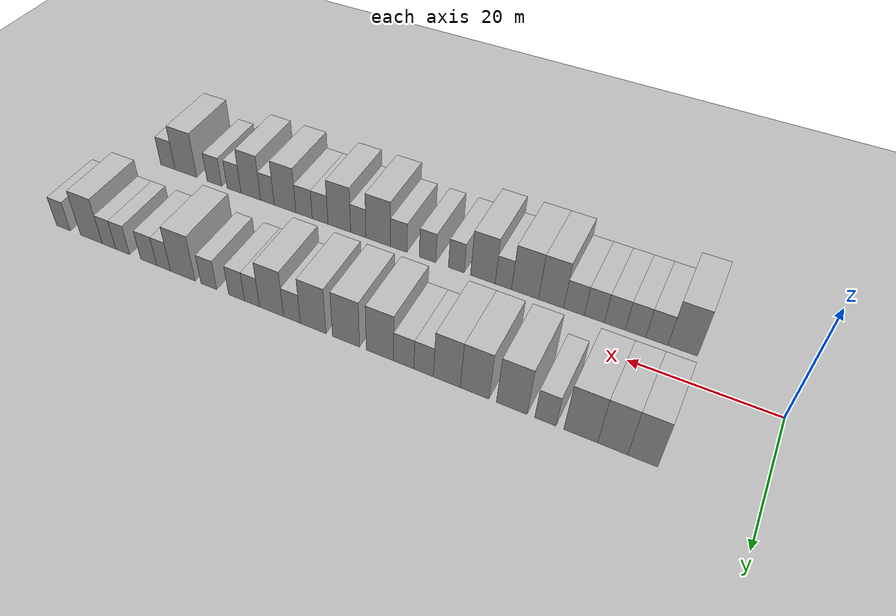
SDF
<sdf version="1.6">
 <world name="default">
  <include><name>ground_plane_1</name><uri>model://HANNAS_ground_plane</uri></include>
  <include>
   <name>ground_plane_2</name>
   <uri>model://HANNAS_ground_plane</uri>
   <pose>100 0 0  0 0 0</pose>
  </include>
  <model name="building_1">
   <static>1</static>
   <pose>13.8228 9.5000 0 0.000000 0.000000 1.570796</pose>
   <link name="link">
    <pose>0 0 4.50 0 0 0</pose>
    <collision name="collision"><geometry><box><size>10.0000 3.6455 9.0000</size></box></geometry></collision>
    <visual name="visual">
     <cast_shadows>0</cast_shadows>
     <geometry><box><size>10.0000 3.6455 9.0000</size></box></geometry>
     <material>
      <script>
       <uri>model://HANNAS_wall/materials/scripts</uri>
       <uri>model://HANNAS_wall/materials/textures</uri>
       <name>vrc/HANNAS_wall</name>
      </script>
     </material>
    </visual>
   </link>
  </model>
  <model name="building_2">
   <static>1</static>
   <pose>17.5082 9.5000 0 0.000000 0.000000 1.570796</pose>
   <link name="link">
    <pose>0 0 4.50 0 0 0</pose>
    <collision name="collision"><geometry><box><size>10.0000 3.7254 9.0000</size></box></geometry></collision>
    <visual name="visual">
     <cast_shadows>0</cast_shadows>
     <geometry><box><size>10.0000 3.7254 9.0000</size></box></geometry>
     <material>
      <script>
       <uri>model://HANNAS_wall/materials/scripts</uri>
       <uri>model://HANNAS_wall/materials/textures</uri>
       <name>vrc/HANNAS_wall</name>
      </script>
     </material>
    </visual>
   </link>
  </model>
  <model name="building_3">
   <static>1</static>
   <pose>21.4982 9.5000 0 0.000000 0.000000 1.570796</pose>
   <link name="link">
    <pose>0 0 4.50 0 0 0</pose>
    <collision name="collision"><geometry><box><size>10.0000 4.2545 9.0000</size></box></geometry></collision>
    <visual name="visual">
     <cast_shadows>0</cast_shadows>
     <geometry><box><size>10.0000 4.2545 9.0000</size></box></geometry>
     <material>
      <script>
       <uri>model://HANNAS_wall/materials/scripts</uri>
       <uri>model://HANNAS_wall/materials/textures</uri>
       <name>vrc/HANNAS_wall</name>
      </script>
     </material>
    </visual>
   </link>
  </model>
  <model name="building_4">
   <static>1</static>
   <pose>26.0055 9.5000 0 0.000000 0.000000 1.570796</pose>
   <link name="link">
    <pose>0 0 3.00 0 0 0</pose>
    <collision name="collision"><geometry><box><size>10.0000 2.7602 6.0000</size></box></geometry></collision>
    <visual name="visual">
     <cast_shadows>0</cast_shadows>
     <geometry><box><size>10.0000 2.7602 6.0000</size></box></geometry>
     <material>
      <script>
       <uri>model://HANNAS_wall/materials/scripts</uri>
       <uri>model://HANNAS_wall/materials/textures</uri>
       <name>vrc/HANNAS_wall</name>
      </script>
     </material>
    </visual>
   </link>
  </model>
  <model name="building_5">
   <static>1</static>
   <pose>30.4323 9.5000 0 0.000000 0.000000 1.570796</pose>
   <link name="link">
    <pose>0 0 4.50 0 0 0</pose>
    <collision name="collision"><geometry><box><size>10.0000 4.0935 9.0000</size></box></geometry></collision>
    <visual name="visual">
     <cast_shadows>0</cast_shadows>
     <geometry><box><size>10.0000 4.0935 9.0000</size></box></geometry>
     <material>
      <script>
       <uri>model://HANNAS_wall/materials/scripts</uri>
       <uri>model://HANNAS_wall/materials/textures</uri>
       <name>vrc/HANNAS_wall</name>
      </script>
     </material>
    </visual>
   </link>
  </model>
  <model name="building_6">
   <static>1</static>
   <pose>35.4440 9.5000 0 0.000000 0.000000 1.570796</pose>
   <link name="link">
    <pose>0 0 4.50 0 0 0</pose>
    <collision name="collision"><geometry><box><size>10.0000 3.9298 9.0000</size></box></geometry></collision>
    <visual name="visual">
     <cast_shadows>0</cast_shadows>
     <geometry><box><size>10.0000 3.9298 9.0000</size></box></geometry>
     <material>
      <script>
       <uri>model://HANNAS_wall/materials/scripts</uri>
       <uri>model://HANNAS_wall/materials/textures</uri>
       <name>vrc/HANNAS_wall</name>
      </script>
     </material>
    </visual>
   </link>
  </model>
  <model name="building_7">
   <static>1</static>
   <pose>39.3031 9.5000 0 0.000000 0.000000 1.570796</pose>
   <link name="link">
    <pose>0 0 4.50 0 0 0</pose>
    <collision name="collision"><geometry><box><size>10.0000 3.7886 9.0000</size></box></geometry></collision>
    <visual name="visual">
     <cast_shadows>0</cast_shadows>
     <geometry><box><size>10.0000 3.7886 9.0000</size></box></geometry>
     <material>
      <script>
       <uri>model://HANNAS_wall/materials/scripts</uri>
       <uri>model://HANNAS_wall/materials/textures</uri>
       <name>vrc/HANNAS_wall</name>
      </script>
     </material>
    </visual>
   </link>
  </model>
  <model name="building_8">
   <static>1</static>
   <pose>42.5841 9.5000 0 0.000000 0.000000 1.570796</pose>
   <link name="link">
    <pose>0 0 3.00 0 0 0</pose>
    <collision name="collision"><geometry><box><size>10.0000 2.7733 6.0000</size></box></geometry></collision>
    <visual name="visual">
     <cast_shadows>0</cast_shadows>
     <geometry><box><size>10.0000 2.7733 6.0000</size></box></geometry>
     <material>
      <script>
       <uri>model://HANNAS_wall/materials/scripts</uri>
       <uri>model://HANNAS_wall/materials/textures</uri>
       <name>vrc/HANNAS_wall</name>
      </script>
     </material>
    </visual>
   </link>
  </model>
  <model name="building_9">
   <static>1</static>
   <pose>45.4373 9.5000 0 0.000000 0.000000 1.570796</pose>
   <link name="link">
    <pose>0 0 3.00 0 0 0</pose>
    <collision name="collision"><geometry><box><size>10.0000 2.9332 6.0000</size></box></geometry></collision>
    <visual name="visual">
     <cast_shadows>0</cast_shadows>
     <geometry><box><size>10.0000 2.9332 6.0000</size></box></geometry>
     <material>
      <script>
       <uri>model://HANNAS_wall/materials/scripts</uri>
       <uri>model://HANNAS_wall/materials/textures</uri>
       <name>vrc/HANNAS_wall</name>
      </script>
     </material>
    </visual>
   </link>
  </model>
  <model name="building_10">
   <static>1</static>
   <pose>48.9115 9.5000 0 0.000000 0.000000 1.570796</pose>
   <link name="link">
    <pose>0 0 4.50 0 0 0</pose>
    <collision name="collision"><geometry><box><size>10.0000 4.0150 9.0000</size></box></geometry></collision>
    <visual name="visual">
     <cast_shadows>0</cast_shadows>
     <geometry><box><size>10.0000 4.0150 9.0000</size></box></geometry>
     <material>
      <script>
       <uri>model://HANNAS_wall/materials/scripts</uri>
       <uri>model://HANNAS_wall/materials/textures</uri>
       <name>vrc/HANNAS_wall</name>
      </script>
     </material>
    </visual>
   </link>
  </model>
  <model name="building_11">
   <static>1</static>
   <pose>53.9710 9.5000 0 0.000000 0.000000 1.570796</pose>
   <link name="link">
    <pose>0 0 4.50 0 0 0</pose>
    <collision name="collision"><geometry><box><size>10.0000 4.1041 9.0000</size></box></geometry></collision>
    <visual name="visual">
     <cast_shadows>0</cast_shadows>
     <geometry><box><size>10.0000 4.1041 9.0000</size></box></geometry>
     <material>
      <script>
       <uri>model://HANNAS_wall/materials/scripts</uri>
       <uri>model://HANNAS_wall/materials/textures</uri>
       <name>vrc/HANNAS_wall</name>
      </script>
     </material>
    </visual>
   </link>
  </model>
  <model name="building_12">
   <static>1</static>
   <pose>59.0237 9.5000 0 0.000000 0.000000 1.570796</pose>
   <link name="link">
    <pose>0 0 4.50 0 0 0</pose>
    <collision name="collision"><geometry><box><size>10.0000 4.0014 9.0000</size></box></geometry></collision>
    <visual name="visual">
     <cast_shadows>0</cast_shadows>
     <geometry><box><size>10.0000 4.0014 9.0000</size></box></geometry>
     <material>
      <script>
       <uri>model://HANNAS_wall/materials/scripts</uri>
       <uri>model://HANNAS_wall/materials/textures</uri>
       <name>vrc/HANNAS_wall</name>
      </script>
     </material>
    </visual>
   </link>
  </model>
  <model name="building_13">
   <static>1</static>
   <pose>62.3560 9.5000 0 0.000000 0.000000 1.570796</pose>
   <link name="link">
    <pose>0 0 3.00 0 0 0</pose>
    <collision name="collision"><geometry><box><size>10.0000 2.6633 6.0000</size></box></geometry></collision>
    <visual name="visual">
     <cast_shadows>0</cast_shadows>
     <geometry><box><size>10.0000 2.6633 6.0000</size></box></geometry>
     <material>
      <script>
       <uri>model://HANNAS_wall/materials/scripts</uri>
       <uri>model://HANNAS_wall/materials/textures</uri>
       <name>vrc/HANNAS_wall</name>
      </script>
     </material>
    </visual>
   </link>
  </model>
  <model name="building_14">
   <static>1</static>
   <pose>65.6383 9.5000 0 0.000000 0.000000 1.570796</pose>
   <link name="link">
    <pose>0 0 4.50 0 0 0</pose>
    <collision name="collision"><geometry><box><size>10.0000 3.9012 9.0000</size></box></geometry></collision>
    <visual name="visual">
     <cast_shadows>0</cast_shadows>
     <geometry><box><size>10.0000 3.9012 9.0000</size></box></geometry>
     <material>
      <script>
       <uri>model://HANNAS_wall/materials/scripts</uri>
       <uri>model://HANNAS_wall/materials/textures</uri>
       <name>vrc/HANNAS_wall</name>
      </script>
     </material>
    </visual>
   </link>
  </model>
  <model name="building_15">
   <static>1</static>
   <pose>68.8008 9.5000 0 0.000000 0.000000 1.570796</pose>
   <link name="link">
    <pose>0 0 3.00 0 0 0</pose>
    <collision name="collision"><geometry><box><size>10.0000 2.4239 6.0000</size></box></geometry></collision>
    <visual name="visual">
     <cast_shadows>0</cast_shadows>
     <geometry><box><size>10.0000 2.4239 6.0000</size></box></geometry>
     <material>
      <script>
       <uri>model://HANNAS_wall/materials/scripts</uri>
       <uri>model://HANNAS_wall/materials/textures</uri>
       <name>vrc/HANNAS_wall</name>
      </script>
     </material>
    </visual>
   </link>
  </model>
  <model name="building_16">
   <static>1</static>
   <pose>71.3409 9.5000 0 0.000000 0.000000 1.570796</pose>
   <link name="link">
    <pose>0 0 3.00 0 0 0</pose>
    <collision name="collision"><geometry><box><size>10.0000 2.6561 6.0000</size></box></geometry></collision>
    <visual name="visual">
     <cast_shadows>0</cast_shadows>
     <geometry><box><size>10.0000 2.6561 6.0000</size></box></geometry>
     <material>
      <script>
       <uri>model://HANNAS_wall/materials/scripts</uri>
       <uri>model://HANNAS_wall/materials/textures</uri>
       <name>vrc/HANNAS_wall</name>
      </script>
     </material>
    </visual>
   </link>
  </model>
  <model name="building_17">
   <static>1</static>
   <pose>76.0085 9.5000 0 0.000000 0.000000 1.570796</pose>
   <link name="link">
    <pose>0 0 3.00 0 0 0</pose>
    <collision name="collision"><geometry><box><size>10.0000 2.6791 6.0000</size></box></geometry></collision>
    <visual name="visual">
     <cast_shadows>0</cast_shadows>
     <geometry><box><size>10.0000 2.6791 6.0000</size></box></geometry>
     <material>
      <script>
       <uri>model://HANNAS_wall/materials/scripts</uri>
       <uri>model://HANNAS_wall/materials/textures</uri>
       <name>vrc/HANNAS_wall</name>
      </script>
     </material>
    </visual>
   </link>
  </model>
  <model name="building_18">
   <static>1</static>
   <pose>80.4945 9.5000 0 0.000000 0.000000 1.570796</pose>
   <link name="link">
    <pose>0 0 4.50 0 0 0</pose>
    <collision name="collision"><geometry><box><size>10.0000 4.2929 9.0000</size></box></geometry></collision>
    <visual name="visual">
     <cast_shadows>0</cast_shadows>
     <geometry><box><size>10.0000 4.2929 9.0000</size></box></geometry>
     <material>
      <script>
       <uri>model://HANNAS_wall/materials/scripts</uri>
       <uri>model://HANNAS_wall/materials/textures</uri>
       <name>vrc/HANNAS_wall</name>
      </script>
     </material>
    </visual>
   </link>
  </model>
  <model name="building_19">
   <static>1</static>
   <pose>83.8605 9.5000 0 0.000000 0.000000 1.570796</pose>
   <link name="link">
    <pose>0 0 3.00 0 0 0</pose>
    <collision name="collision"><geometry><box><size>10.0000 2.4390 6.0000</size></box></geometry></collision>
    <visual name="visual">
     <cast_shadows>0</cast_shadows>
     <geometry><box><size>10.0000 2.4390 6.0000</size></box></geometry>
     <material>
      <script>
       <uri>model://HANNAS_wall/materials/scripts</uri>
       <uri>model://HANNAS_wall/materials/textures</uri>
       <name>vrc/HANNAS_wall</name>
      </script>
     </material>
    </visual>
   </link>
  </model>
  <model name="building_20">
   <static>1</static>
   <pose>86.5218 9.5000 0 0.000000 0.000000 1.570796</pose>
   <link name="link">
    <pose>0 0 3.00 0 0 0</pose>
    <collision name="collision"><geometry><box><size>10.0000 2.8836 6.0000</size></box></geometry></collision>
    <visual name="visual">
     <cast_shadows>0</cast_shadows>
     <geometry><box><size>10.0000 2.8836 6.0000</size></box></geometry>
     <material>
      <script>
       <uri>model://HANNAS_wall/materials/scripts</uri>
       <uri>model://HANNAS_wall/materials/textures</uri>
       <name>vrc/HANNAS_wall</name>
      </script>
     </material>
    </visual>
   </link>
  </model>
  <model name="building_21">
   <static>1</static>
   <pose>91.2309 9.5000 0 0.000000 0.000000 1.570796</pose>
   <link name="link">
    <pose>0 0 3.00 0 0 0</pose>
    <collision name="collision"><geometry><box><size>10.0000 2.5348 6.0000</size></box></geometry></collision>
    <visual name="visual">
     <cast_shadows>0</cast_shadows>
     <geometry><box><size>10.0000 2.5348 6.0000</size></box></geometry>
     <material>
      <script>
       <uri>model://HANNAS_wall/materials/scripts</uri>
       <uri>model://HANNAS_wall/materials/textures</uri>
       <name>vrc/HANNAS_wall</name>
      </script>
     </material>
    </visual>
   </link>
  </model>
  <model name="building_22">
   <static>1</static>
   <pose>93.7545 9.5000 0 0.000000 0.000000 1.570796</pose>
   <link name="link">
    <pose>0 0 3.00 0 0 0</pose>
    <collision name="collision"><geometry><box><size>10.0000 2.5124 6.0000</size></box></geometry></collision>
    <visual name="visual">
     <cast_shadows>0</cast_shadows>
     <geometry><box><size>10.0000 2.5124 6.0000</size></box></geometry>
     <material>
      <script>
       <uri>model://HANNAS_wall/materials/scripts</uri>
       <uri>model://HANNAS_wall/materials/textures</uri>
       <name>vrc/HANNAS_wall</name>
      </script>
     </material>
    </visual>
   </link>
  </model>
  <model name="building_23">
   <static>1</static>
   <pose>97.0483 9.5000 0 0.000000 0.000000 1.570796</pose>
   <link name="link">
    <pose>0 0 4.50 0 0 0</pose>
    <collision name="collision"><geometry><box><size>10.0000 4.0752 9.0000</size></box></geometry></collision>
    <visual name="visual">
     <cast_shadows>0</cast_shadows>
     <geometry><box><size>10.0000 4.0752 9.0000</size></box></geometry>
     <material>
      <script>
       <uri>model://HANNAS_wall/materials/scripts</uri>
       <uri>model://HANNAS_wall/materials/textures</uri>
       <name>vrc/HANNAS_wall</name>
      </script>
     </material>
    </visual>
   </link>
  </model>
  <model name="building_24">
   <static>1</static>
   <pose>102.4143 9.5000 0 0.000000 0.000000 1.570796</pose>
   <link name="link">
    <pose>0 0 3.00 0 0 0</pose>
    <collision name="collision"><geometry><box><size>10.0000 2.6569 6.0000</size></box></geometry></collision>
    <visual name="visual">
     <cast_shadows>0</cast_shadows>
     <geometry><box><size>10.0000 2.6569 6.0000</size></box></geometry>
     <material>
      <script>
       <uri>model://HANNAS_wall/materials/scripts</uri>
       <uri>model://HANNAS_wall/materials/textures</uri>
       <name>vrc/HANNAS_wall</name>
      </script>
     </material>
    </visual>
   </link>
  </model>
  <model name="building_49">
   <static>1</static>
   <pose>13.9680 -9.5000 0 0.000000 0.000000 1.570796</pose>
   <link name="link">
    <pose>0 0 4.50 0 0 0</pose>
    <collision name="collision"><geometry><box><size>10.0000 3.9360 9.0000</size></box></geometry></collision>
    <visual name="visual">
     <cast_shadows>0</cast_shadows>
     <geometry><box><size>10.0000 3.9360 9.0000</size></box></geometry>
     <material>
      <script>
       <uri>model://HANNAS_wall/materials/scripts</uri>
       <uri>model://HANNAS_wall/materials/textures</uri>
       <name>vrc/HANNAS_wall</name>
      </script>
     </material>
    </visual>
   </link>
  </model>
  <model name="building_50">
   <static>1</static>
   <pose>17.4290 -9.5000 0 0.000000 0.000000 1.570796</pose>
   <link name="link">
    <pose>0 0 3.00 0 0 0</pose>
    <collision name="collision"><geometry><box><size>10.0000 2.9860 6.0000</size></box></geometry></collision>
    <visual name="visual">
     <cast_shadows>0</cast_shadows>
     <geometry><box><size>10.0000 2.9860 6.0000</size></box></geometry>
     <material>
      <script>
       <uri>model://HANNAS_wall/materials/scripts</uri>
       <uri>model://HANNAS_wall/materials/textures</uri>
       <name>vrc/HANNAS_wall</name>
      </script>
     </material>
    </visual>
   </link>
  </model>
  <model name="building_51">
   <static>1</static>
   <pose>20.3248 -9.5000 0 0.000000 0.000000 1.570796</pose>
   <link name="link">
    <pose>0 0 3.00 0 0 0</pose>
    <collision name="collision"><geometry><box><size>10.0000 2.8054 6.0000</size></box></geometry></collision>
    <visual name="visual">
     <cast_shadows>0</cast_shadows>
     <geometry><box><size>10.0000 2.8054 6.0000</size></box></geometry>
     <material>
      <script>
       <uri>model://HANNAS_wall/materials/scripts</uri>
       <uri>model://HANNAS_wall/materials/textures</uri>
       <name>vrc/HANNAS_wall</name>
      </script>
     </material>
    </visual>
   </link>
  </model>
  <model name="building_52">
   <static>1</static>
   <pose>23.1849 -9.5000 0 0.000000 0.000000 1.570796</pose>
   <link name="link">
    <pose>0 0 3.00 0 0 0</pose>
    <collision name="collision"><geometry><box><size>10.0000 2.9150 6.0000</size></box></geometry></collision>
    <visual name="visual">
     <cast_shadows>0</cast_shadows>
     <geometry><box><size>10.0000 2.9150 6.0000</size></box></geometry>
     <material>
      <script>
       <uri>model://HANNAS_wall/materials/scripts</uri>
       <uri>model://HANNAS_wall/materials/textures</uri>
       <name>vrc/HANNAS_wall</name>
      </script>
     </material>
    </visual>
   </link>
  </model>
  <model name="building_53">
   <static>1</static>
   <pose>26.0589 -9.5000 0 0.000000 0.000000 1.570796</pose>
   <link name="link">
    <pose>0 0 3.00 0 0 0</pose>
    <collision name="collision"><geometry><box><size>10.0000 2.8329 6.0000</size></box></geometry></collision>
    <visual name="visual">
     <cast_shadows>0</cast_shadows>
     <geometry><box><size>10.0000 2.8329 6.0000</size></box></geometry>
     <material>
      <script>
       <uri>model://HANNAS_wall/materials/scripts</uri>
       <uri>model://HANNAS_wall/materials/textures</uri>
       <name>vrc/HANNAS_wall</name>
      </script>
     </material>
    </visual>
   </link>
  </model>
  <model name="building_54">
   <static>1</static>
   <pose>28.9459 -9.5000 0 0.000000 0.000000 1.570796</pose>
   <link name="link">
    <pose>0 0 3.00 0 0 0</pose>
    <collision name="collision"><geometry><box><size>10.0000 2.9412 6.0000</size></box></geometry></collision>
    <visual name="visual">
     <cast_shadows>0</cast_shadows>
     <geometry><box><size>10.0000 2.9412 6.0000</size></box></geometry>
     <material>
      <script>
       <uri>model://HANNAS_wall/materials/scripts</uri>
       <uri>model://HANNAS_wall/materials/textures</uri>
       <name>vrc/HANNAS_wall</name>
      </script>
     </material>
    </visual>
   </link>
  </model>
  <model name="building_55">
   <static>1</static>
   <pose>32.2471 -9.5000 0 0.000000 0.000000 1.570796</pose>
   <link name="link">
    <pose>0 0 4.50 0 0 0</pose>
    <collision name="collision"><geometry><box><size>10.0000 3.6613 9.0000</size></box></geometry></collision>
    <visual name="visual">
     <cast_shadows>0</cast_shadows>
     <geometry><box><size>10.0000 3.6613 9.0000</size></box></geometry>
     <material>
      <script>
       <uri>model://HANNAS_wall/materials/scripts</uri>
       <uri>model://HANNAS_wall/materials/textures</uri>
       <name>vrc/HANNAS_wall</name>
      </script>
     </material>
    </visual>
   </link>
  </model>
  <model name="building_56">
   <static>1</static>
   <pose>36.0816 -9.5000 0 0.000000 0.000000 1.570796</pose>
   <link name="link">
    <pose>0 0 4.50 0 0 0</pose>
    <collision name="collision"><geometry><box><size>10.0000 4.0078 9.0000</size></box></geometry></collision>
    <visual name="visual">
     <cast_shadows>0</cast_shadows>
     <geometry><box><size>10.0000 4.0078 9.0000</size></box></geometry>
     <material>
      <script>
       <uri>model://HANNAS_wall/materials/scripts</uri>
       <uri>model://HANNAS_wall/materials/textures</uri>
       <name>vrc/HANNAS_wall</name>
      </script>
     </material>
    </visual>
   </link>
  </model>
  <model name="building_57">
   <static>1</static>
   <pose>39.3182 -9.5000 0 0.000000 0.000000 1.570796</pose>
   <link name="link">
    <pose>0 0 3.00 0 0 0</pose>
    <collision name="collision"><geometry><box><size>10.0000 2.4653 6.0000</size></box></geometry></collision>
    <visual name="visual">
     <cast_shadows>0</cast_shadows>
     <geometry><box><size>10.0000 2.4653 6.0000</size></box></geometry>
     <material>
      <script>
       <uri>model://HANNAS_wall/materials/scripts</uri>
       <uri>model://HANNAS_wall/materials/textures</uri>
       <name>vrc/HANNAS_wall</name>
      </script>
     </material>
    </visual>
   </link>
  </model>
  <model name="building_58">
   <static>1</static>
   <pose>42.4364 -9.5000 0 0.000000 0.000000 1.570796</pose>
   <link name="link">
    <pose>0 0 4.50 0 0 0</pose>
    <collision name="collision"><geometry><box><size>10.0000 3.7712 9.0000</size></box></geometry></collision>
    <visual name="visual">
     <cast_shadows>0</cast_shadows>
     <geometry><box><size>10.0000 3.7712 9.0000</size></box></geometry>
     <material>
      <script>
       <uri>model://HANNAS_wall/materials/scripts</uri>
       <uri>model://HANNAS_wall/materials/textures</uri>
       <name>vrc/HANNAS_wall</name>
      </script>
     </material>
    </visual>
   </link>
  </model>
  <model name="building_59">
   <static>1</static>
   <pose>46.5537 -9.5000 0 0.000000 0.000000 1.570796</pose>
   <link name="link">
    <pose>0 0 3.00 0 0 0</pose>
    <collision name="collision"><geometry><box><size>10.0000 2.4634 6.0000</size></box></geometry></collision>
    <visual name="visual">
     <cast_shadows>0</cast_shadows>
     <geometry><box><size>10.0000 2.4634 6.0000</size></box></geometry>
     <material>
      <script>
       <uri>model://HANNAS_wall/materials/scripts</uri>
       <uri>model://HANNAS_wall/materials/textures</uri>
       <name>vrc/HANNAS_wall</name>
      </script>
     </material>
    </visual>
   </link>
  </model>
  <model name="building_60">
   <static>1</static>
   <pose>51.1107 -9.5000 0 0.000000 0.000000 1.570796</pose>
   <link name="link">
    <pose>0 0 3.00 0 0 0</pose>
    <collision name="collision"><geometry><box><size>10.0000 2.6505 6.0000</size></box></geometry></collision>
    <visual name="visual">
     <cast_shadows>0</cast_shadows>
     <geometry><box><size>10.0000 2.6505 6.0000</size></box></geometry>
     <material>
      <script>
       <uri>model://HANNAS_wall/materials/scripts</uri>
       <uri>model://HANNAS_wall/materials/textures</uri>
       <name>vrc/HANNAS_wall</name>
      </script>
     </material>
    </visual>
   </link>
  </model>
  <model name="building_61">
   <static>1</static>
   <pose>55.7786 -9.5000 0 0.000000 0.000000 1.570796</pose>
   <link name="link">
    <pose>0 0 3.00 0 0 0</pose>
    <collision name="collision"><geometry><box><size>10.0000 2.6854 6.0000</size></box></geometry></collision>
    <visual name="visual">
     <cast_shadows>0</cast_shadows>
     <geometry><box><size>10.0000 2.6854 6.0000</size></box></geometry>
     <material>
      <script>
       <uri>model://HANNAS_wall/materials/scripts</uri>
       <uri>model://HANNAS_wall/materials/textures</uri>
       <name>vrc/HANNAS_wall</name>
      </script>
     </material>
    </visual>
   </link>
  </model>
  <model name="building_62">
   <static>1</static>
   <pose>59.1581 -9.5000 0 0.000000 0.000000 1.570796</pose>
   <link name="link">
    <pose>0 0 4.50 0 0 0</pose>
    <collision name="collision"><geometry><box><size>10.0000 4.0737 9.0000</size></box></geometry></collision>
    <visual name="visual">
     <cast_shadows>0</cast_shadows>
     <geometry><box><size>10.0000 4.0737 9.0000</size></box></geometry>
     <material>
      <script>
       <uri>model://HANNAS_wall/materials/scripts</uri>
       <uri>model://HANNAS_wall/materials/textures</uri>
       <name>vrc/HANNAS_wall</name>
      </script>
     </material>
    </visual>
   </link>
  </model>
  <model name="building_63">
   <static>1</static>
   <pose>62.4894 -9.5000 0 0.000000 0.000000 1.570796</pose>
   <link name="link">
    <pose>0 0 3.00 0 0 0</pose>
    <collision name="collision"><geometry><box><size>10.0000 2.5890 6.0000</size></box></geometry></collision>
    <visual name="visual">
     <cast_shadows>0</cast_shadows>
     <geometry><box><size>10.0000 2.5890 6.0000</size></box></geometry>
     <material>
      <script>
       <uri>model://HANNAS_wall/materials/scripts</uri>
       <uri>model://HANNAS_wall/materials/textures</uri>
       <name>vrc/HANNAS_wall</name>
      </script>
     </material>
    </visual>
   </link>
  </model>
  <model name="building_64">
   <static>1</static>
   <pose>65.7362 -9.5000 0 0.000000 0.000000 1.570796</pose>
   <link name="link">
    <pose>0 0 4.50 0 0 0</pose>
    <collision name="collision"><geometry><box><size>10.0000 3.9047 9.0000</size></box></geometry></collision>
    <visual name="visual">
     <cast_shadows>0</cast_shadows>
     <geometry><box><size>10.0000 3.9047 9.0000</size></box></geometry>
     <material>
      <script>
       <uri>model://HANNAS_wall/materials/scripts</uri>
       <uri>model://HANNAS_wall/materials/textures</uri>
       <name>vrc/HANNAS_wall</name>
      </script>
     </material>
    </visual>
   </link>
  </model>
  <model name="building_65">
   <static>1</static>
   <pose>69.0563 -9.5000 0 0.000000 0.000000 1.570796</pose>
   <link name="link">
    <pose>0 0 3.00 0 0 0</pose>
    <collision name="collision"><geometry><box><size>10.0000 2.7354 6.0000</size></box></geometry></collision>
    <visual name="visual">
     <cast_shadows>0</cast_shadows>
     <geometry><box><size>10.0000 2.7354 6.0000</size></box></geometry>
     <material>
      <script>
       <uri>model://HANNAS_wall/materials/scripts</uri>
       <uri>model://HANNAS_wall/materials/textures</uri>
       <name>vrc/HANNAS_wall</name>
      </script>
     </material>
    </visual>
   </link>
  </model>
  <model name="building_66">
   <static>1</static>
   <pose>71.8735 -9.5000 0 0.000000 0.000000 1.570796</pose>
   <link name="link">
    <pose>0 0 3.00 0 0 0</pose>
    <collision name="collision"><geometry><box><size>10.0000 2.8991 6.0000</size></box></geometry></collision>
    <visual name="visual">
     <cast_shadows>0</cast_shadows>
     <geometry><box><size>10.0000 2.8991 6.0000</size></box></geometry>
     <material>
      <script>
       <uri>model://HANNAS_wall/materials/scripts</uri>
       <uri>model://HANNAS_wall/materials/textures</uri>
       <name>vrc/HANNAS_wall</name>
      </script>
     </material>
    </visual>
   </link>
  </model>
  <model name="building_67">
   <static>1</static>
   <pose>75.2714 -9.5000 0 0.000000 0.000000 1.570796</pose>
   <link name="link">
    <pose>0 0 4.50 0 0 0</pose>
    <collision name="collision"><geometry><box><size>10.0000 3.8966 9.0000</size></box></geometry></collision>
    <visual name="visual">
     <cast_shadows>0</cast_shadows>
     <geometry><box><size>10.0000 3.8966 9.0000</size></box></geometry>
     <material>
      <script>
       <uri>model://HANNAS_wall/materials/scripts</uri>
       <uri>model://HANNAS_wall/materials/textures</uri>
       <name>vrc/HANNAS_wall</name>
      </script>
     </material>
    </visual>
   </link>
  </model>
  <model name="building_68">
   <static>1</static>
   <pose>78.4547 -9.5000 0 0.000000 0.000000 1.570796</pose>
   <link name="link">
    <pose>0 0 3.00 0 0 0</pose>
    <collision name="collision"><geometry><box><size>10.0000 2.4700 6.0000</size></box></geometry></collision>
    <visual name="visual">
     <cast_shadows>0</cast_shadows>
     <geometry><box><size>10.0000 2.4700 6.0000</size></box></geometry>
     <material>
      <script>
       <uri>model://HANNAS_wall/materials/scripts</uri>
       <uri>model://HANNAS_wall/materials/textures</uri>
       <name>vrc/HANNAS_wall</name>
      </script>
     </material>
    </visual>
   </link>
  </model>
  <model name="building_69">
   <static>1</static>
   <pose>81.5020 -9.5000 0 0.000000 0.000000 1.570796</pose>
   <link name="link">
    <pose>0 0 4.50 0 0 0</pose>
    <collision name="collision"><geometry><box><size>10.0000 3.6245 9.0000</size></box></geometry></collision>
    <visual name="visual">
     <cast_shadows>0</cast_shadows>
     <geometry><box><size>10.0000 3.6245 9.0000</size></box></geometry>
     <material>
      <script>
       <uri>model://HANNAS_wall/materials/scripts</uri>
       <uri>model://HANNAS_wall/materials/textures</uri>
       <name>vrc/HANNAS_wall</name>
      </script>
     </material>
    </visual>
   </link>
  </model>
  <model name="building_70">
   <static>1</static>
   <pose>84.6232 -9.5000 0 0.000000 0.000000 1.570796</pose>
   <link name="link">
    <pose>0 0 3.00 0 0 0</pose>
    <collision name="collision"><geometry><box><size>10.0000 2.6178 6.0000</size></box></geometry></collision>
    <visual name="visual">
     <cast_shadows>0</cast_shadows>
     <geometry><box><size>10.0000 2.6178 6.0000</size></box></geometry>
     <material>
      <script>
       <uri>model://HANNAS_wall/materials/scripts</uri>
       <uri>model://HANNAS_wall/materials/textures</uri>
       <name>vrc/HANNAS_wall</name>
      </script>
     </material>
    </visual>
   </link>
  </model>
  <model name="building_71">
   <static>1</static>
   <pose>88.3349 -9.5000 0 0.000000 0.000000 1.570796</pose>
   <link name="link">
    <pose>0 0 3.00 0 0 0</pose>
    <collision name="collision"><geometry><box><size>10.0000 2.8058 6.0000</size></box></geometry></collision>
    <visual name="visual">
     <cast_shadows>0</cast_shadows>
     <geometry><box><size>10.0000 2.8058 6.0000</size></box></geometry>
     <material>
      <script>
       <uri>model://HANNAS_wall/materials/scripts</uri>
       <uri>model://HANNAS_wall/materials/textures</uri>
       <name>vrc/HANNAS_wall</name>
      </script>
     </material>
    </visual>
   </link>
  </model>
  <model name="building_72">
   <static>1</static>
   <pose>93.8609 -9.5000 0 0.000000 0.000000 1.570796</pose>
   <link name="link">
    <pose>0 0 4.50 0 0 0</pose>
    <collision name="collision"><geometry><box><size>10.0000 4.2462 9.0000</size></box></geometry></collision>
    <visual name="visual">
     <cast_shadows>0</cast_shadows>
     <geometry><box><size>10.0000 4.2462 9.0000</size></box></geometry>
     <material>
      <script>
       <uri>model://HANNAS_wall/materials/scripts</uri>
       <uri>model://HANNAS_wall/materials/textures</uri>
       <name>vrc/HANNAS_wall</name>
      </script>
     </material>
    </visual>
   </link>
  </model>
  <model name="building_73">
   <static>1</static>
   <pose>97.4009 -9.5000 0 0.000000 0.000000 1.570796</pose>
   <link name="link">
    <pose>0 0 3.00 0 0 0</pose>
    <collision name="collision"><geometry><box><size>10.0000 2.8338 6.0000</size></box></geometry></collision>
    <visual name="visual">
     <cast_shadows>0</cast_shadows>
     <geometry><box><size>10.0000 2.8338 6.0000</size></box></geometry>
     <material>
      <script>
       <uri>model://HANNAS_wall/materials/scripts</uri>
       <uri>model://HANNAS_wall/materials/textures</uri>
       <name>vrc/HANNAS_wall</name>
      </script>
     </material>
    </visual>
   </link>
  </model>
 </world>
</sdf>
